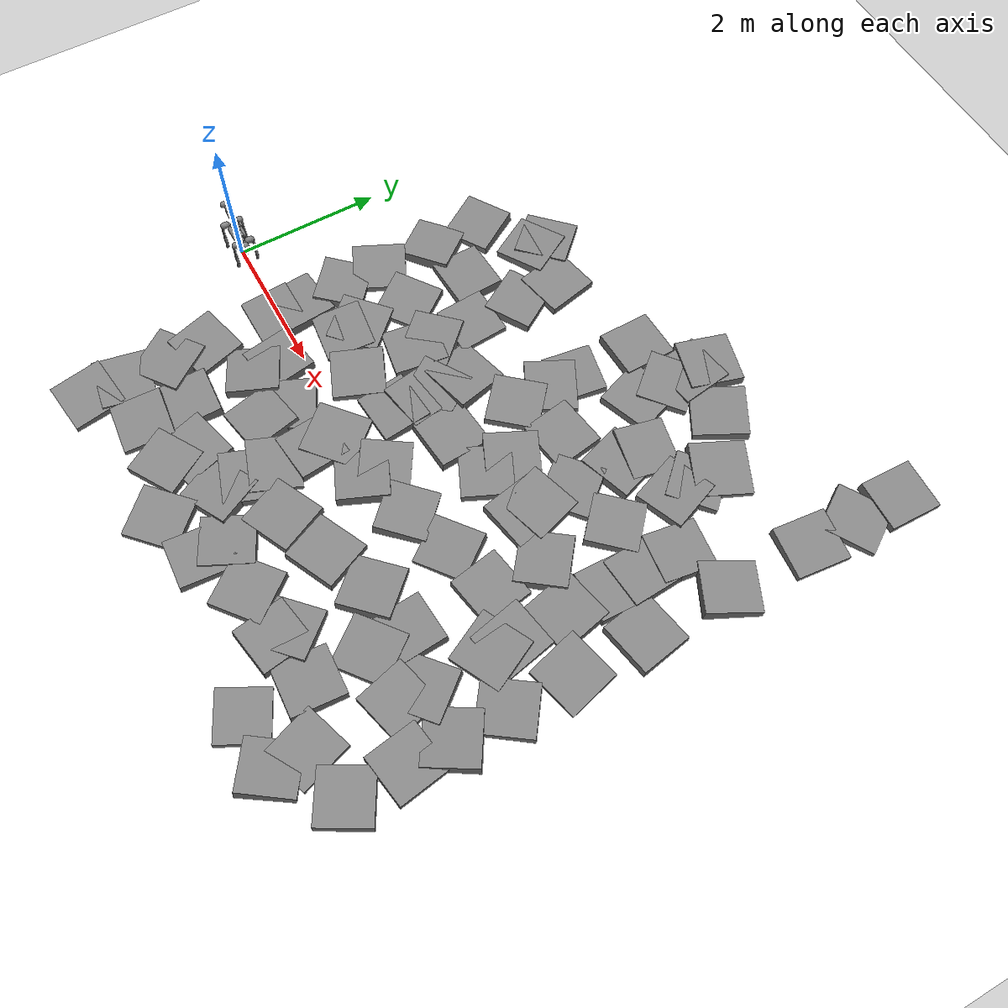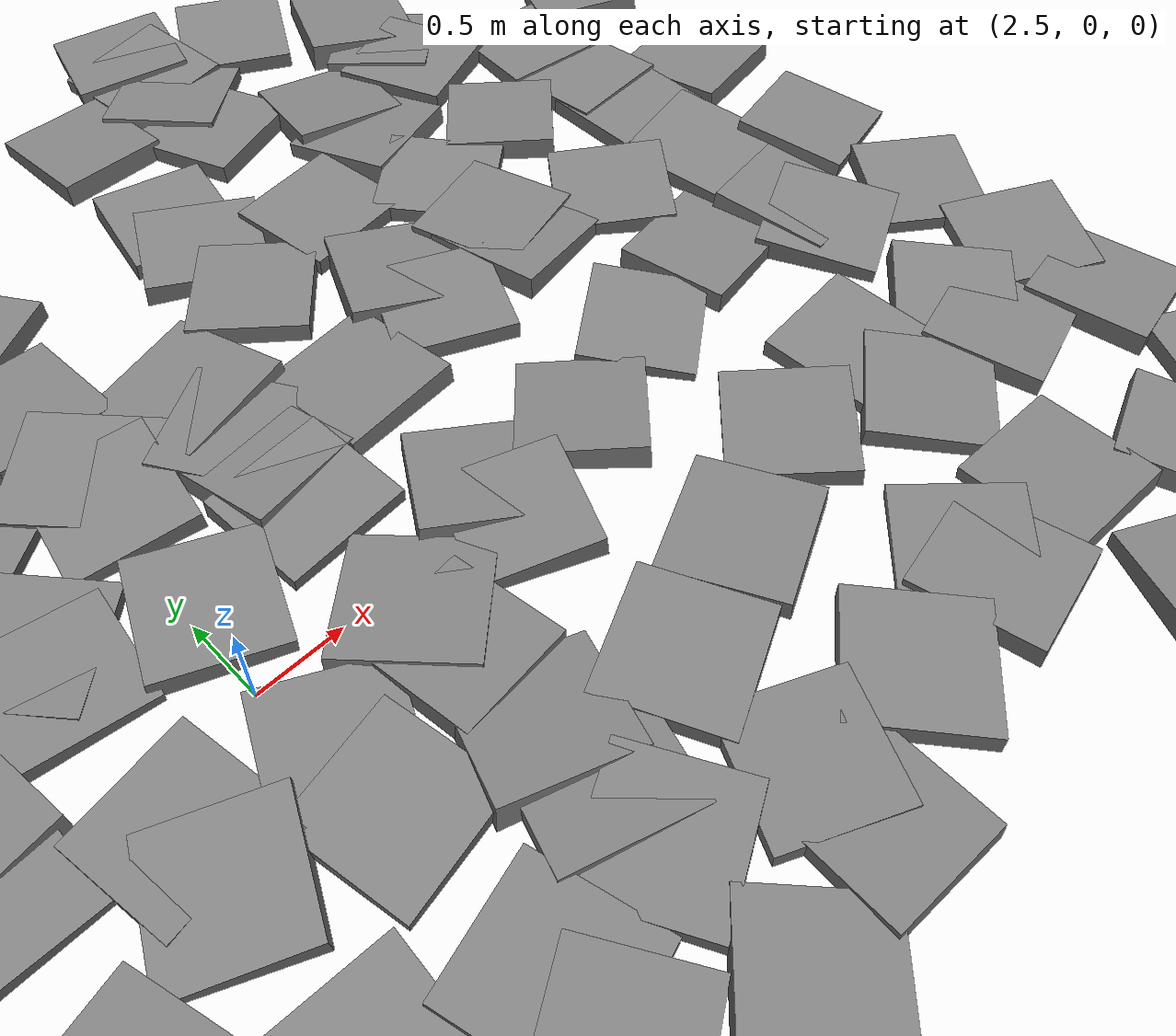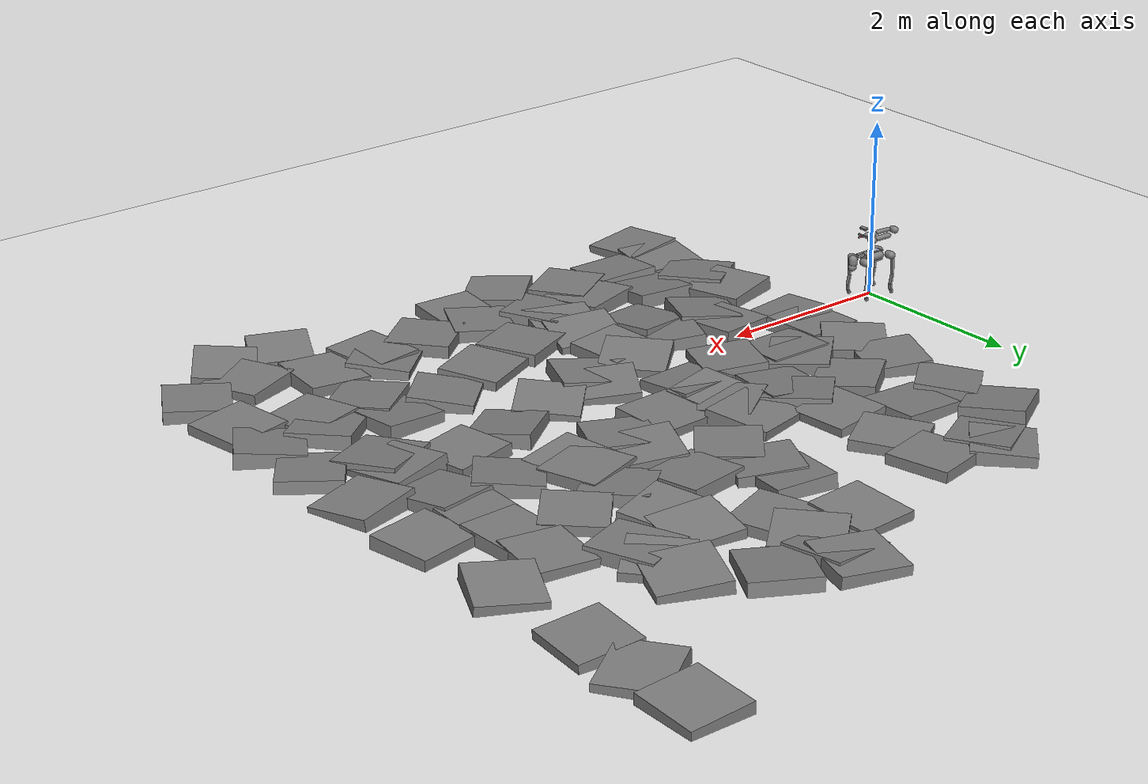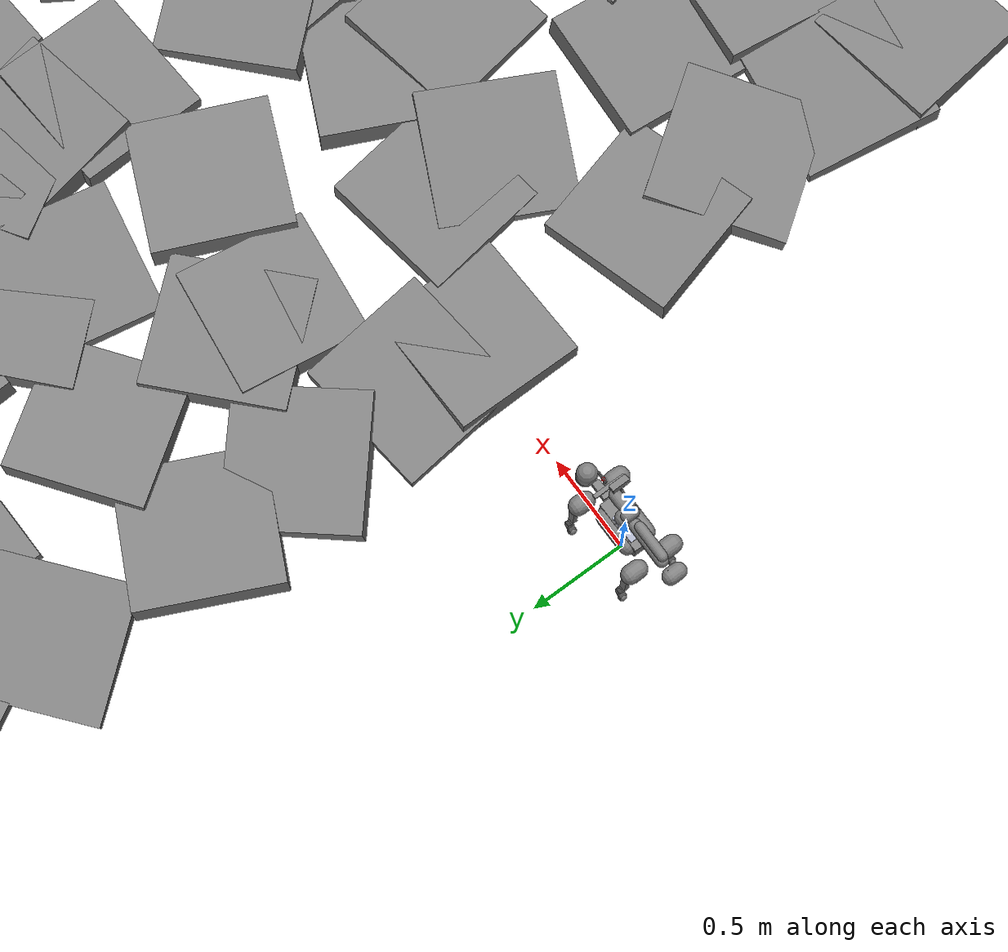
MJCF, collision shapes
<mujoco model="rough scene">
      <include file="go2_piper_l.xml"/>

      <statistic center="0 0 0.1" extent="0.8"/>

      <visual>
            <headlight diffuse="0.4 0.4 0.4" ambient="0.25 0.25 0.25" specular="0.25 0.25 0.25"/>
            <rgba haze="0.99 0.99 0.99 1"/>
            <global azimuth="-130" elevation="-20"/>
      </visual>
      <asset>
            <texture
                  type="skybox"
                  builtin="gradient"
                  rgb1="0.99 0.99 0.99"
                  rgb2="0.99 0.99 0.99"
                  width="512"
                  height="3072"
            />
            <texture
                  type="2d"
                  name="groundplane"
                  builtin="checker"
                  mark="edge"
                  rgb1="0.93 0.93 0.93"
                  rgb2="0.93 0.93 0.93"
                  markrgb="0 0 0"
                  width="250"
                  height="250"
            />
            <material name="groundplane" texture="groundplane" texuniform="true" texrepeat="5 5" reflectance="0.0"/>
      </asset>

      <worldbody>
            <light pos="0 0 5.0" dir="0 0 -1" directional="true" castshadow="false"/>

            <geom name="floor" size="0 0 0.05" type="plane" material="groundplane"/>

            <geom size="0.354678 0.358708 0.0896548" pos="1.2 -2.71166 0.02" quat="0.0652341 -0.0319302 0.0254488 -0.997034" type="box"/>
            <geom size="0.356488 0.365869 0.0788364" pos="1.2 -2.21978 0.02" quat="0.759952 -0.0193772 0.0245563 0.649226" type="box"/>
            <geom size="0.364622 0.35751 0.0906182" pos="1.2 -1.58577 0.02" quat="0.458906 -0.00516719 -0.0375923 0.887674" type="box"/>
            <geom size="0.354122 0.35046 0.0929774" pos="1.2 -1.06653 0.02" quat="0.990294 0.00586796 0.0316036 0.135219" type="box"/>
            <geom size="0.335666 0.343025 0.0812434" pos="1.2 -0.047247 0.02" quat="0.699206 0.0552936 -0.00835086 0.71273" type="box"/>
            <geom size="0.339463 0.36249 0.0864424" pos="1.2 0.317769 0.02" quat="0.745624 0.00539253 -0.0321707 -0.665567" type="box"/>
            <geom size="0.346239 0.335771 0.0967117" pos="1.2 0.974073 0.02" quat="0.938524 -0.0367319 0.00108768 -0.343253" type="box"/>
            <geom size="0.361414 0.341298 0.0918175" pos="1.2 1.53126 0.02" quat="0.843035 0.0321216 0.024535 0.536338" type="box"/>
            <geom size="0.335286 0.343191 0.0859845" pos="1.2 2.36775 0.02" quat="0.902709 0.00500436 -0.053257 -0.426913" type="box"/>
            <geom size="0.344622 0.334008 0.0979981" pos="1.2 3.08121 0.02" quat="0.867245 0.041568 0.0197942 -0.495747" type="box"/>
            <geom size="0.353424 0.341678 0.0853316" pos="1.9 -2.23449 0.02" quat="0.0506356 0.0172853 -0.0483532 0.997396" type="box"/>
            <geom size="0.34913 0.342748 0.0801555" pos="1.9 -1.59372 0.02" quat="0.998266 0.0473363 -0.017491 -0.0302989" type="box"/>
            <geom size="0.34364 0.350693 0.0913967" pos="1.9 -0.675116 0.02" quat="0.974087 0.0249417 -0.0498964 -0.219185" type="box"/>
            <geom size="0.353011 0.333798 0.0864206" pos="1.9 -0.315923 0.02" quat="0.996769 0.00784916 -0.019476 0.0775293" type="box"/>
            <geom size="0.334267 0.344324 0.0811139" pos="1.9 0.636574 0.02" quat="0.663122 0.00759046 0.0495771 -0.746829" type="box"/>
            <geom size="0.336241 0.358561 0.0890266" pos="1.9 0.885202 0.02" quat="0.40212 0.0362004 -0.00519903 0.914856" type="box"/>
            <geom size="0.341201 0.351484 0.0837107" pos="1.9 1.61867 0.02" quat="0.891391 0.00850887 0.0430055 -0.45111" type="box"/>
            <geom size="0.33302 0.366726 0.091285" pos="1.9 2.52752 0.02" quat="0.716961 0.025214 -0.0159079 -0.696475" type="box"/>
            <geom size="0.337699 0.347496 0.0939288" pos="1.9 3.54656 0.02" quat="0.50233 -0.0146459 -0.0372062 0.863751" type="box"/>
            <geom size="0.335654 0.360502 0.0911121" pos="1.9 3.78412 0.02" quat="0.920172 -0.00357184 -0.0312743 -0.390248" type="box"/>
            <geom size="0.333574 0.348359 0.0950439" pos="2.6 -2.20095 0.02" quat="0.492231 0.0128201 -0.000669289 0.87037" type="box"/>
            <geom size="0.359895 0.362198 0.0919442" pos="2.6 -1.82491 0.02" quat="0.990756 0.0263184 0.0151926 0.13221" type="box"/>
            <geom size="0.348548 0.350459 0.089338" pos="2.6 -0.882231 0.02" quat="0.994556 0.0372519 -0.0291963 0.0928359" type="box"/>
            <geom size="0.348484 0.347091 0.0813035" pos="2.6 -0.476281 0.02" quat="0.213481 0.0361536 -0.0243802 0.975973" type="box"/>
            <geom size="0.352582 0.342784 0.093094" pos="2.6 0.508585 0.02" quat="0.831823 0.0335048 0.00443074 0.554011" type="box"/>
            <geom size="0.34627 0.362757 0.0871507" pos="2.6 1.35291 0.02" quat="0.0845878 -0.0348768 -0.0213519 0.995577" type="box"/>
            <geom size="0.339962 0.36385 0.0998801" pos="2.6 1.60211 0.02" quat="0.370094 0.0271889 0.0305026 -0.928095" type="box"/>
            <geom size="0.338962 0.334916 0.0843823" pos="2.6 2.20558 0.02" quat="0.682859 0.031337 0.0272987 0.729367" type="box"/>
            <geom size="0.333355 0.362489 0.0847502" pos="2.6 2.94372 0.02" quat="0.275021 -0.00811829 -0.0240645 -0.961103" type="box"/>
            <geom size="0.352068 0.336788 0.0870109" pos="2.6 3.54017 0.02" quat="0.77751 -0.00483518 0.00535218 -0.628829" type="box"/>
            <geom size="0.360265 0.34693 0.082794" pos="3.3 -2.57122 0.02" quat="0.929187 0.029074 0.0189687 0.367977" type="box"/>
            <geom size="0.354015 0.345381 0.0963107" pos="3.3 -1.77017 0.02" quat="0.237504 0.0342253 -0.00473834 -0.970772" type="box"/>
            <geom size="0.365348 0.357255 0.0845119" pos="3.3 -1.37691 0.02" quat="0.986766 -0.0379353 0.00187736 -0.157638" type="box"/>
            <geom size="0.334136 0.365843 0.0975329" pos="3.3 -1.03014 0.02" quat="0.812501 -0.000369101 0.0567499 0.580191" type="box"/>
            <geom size="0.336489 0.345521 0.0955185" pos="3.3 -0.492389 0.02" quat="0.998053 -0.0186523 0.0127422 0.0581372" type="box"/>
            <geom size="0.363931 0.365425 0.0871527" pos="3.3 -0.162213 0.02" quat="0.93154 -0.0240255 0.0332841 0.361315" type="box"/>
            <geom size="0.335544 0.359939 0.0854125" pos="3.3 0.683015 0.02" quat="0.731599 0.0319146 0.0219907 -0.680632" type="box"/>
            <geom size="0.334482 0.342912 0.0938826" pos="3.3 1.0608 0.02" quat="0.994675 -0.0337491 0.0272725 0.093481" type="box"/>
            <geom size="0.335392 0.349373 0.0903187" pos="3.3 1.30254 0.02" quat="0.473372 0.0352887 0.00328001 0.88015" type="box"/>
            <geom size="0.366218 0.366639 0.0907957" pos="3.3 1.71047 0.02" quat="0.990801 -0.0411533 -0.0209012 0.127209" type="box"/>
            <geom size="0.337514 0.356996 0.0800177" pos="4 -2.35049 0.02" quat="0.99926 -0.0242953 0.0017573 -0.0297516" type="box"/>
            <geom size="0.35355 0.335905 0.0850661" pos="4 -1.96591 0.02" quat="0.528026 0.0159756 -0.0160628 -0.848926" type="box"/>
            <geom size="0.354043 0.363543 0.0900548" pos="4 -1.23044 0.02" quat="0.843119 0.010908 -0.00635495 -0.537578" type="box"/>
            <geom size="0.344493 0.337035 0.0932492" pos="4 -0.127273 0.02" quat="0.549308 0.0333683 -0.0301667 -0.834409" type="box"/>
            <geom size="0.332842 0.340403 0.0816387" pos="4 0.189606 0.02" quat="0.872441 0.0155629 0.0556251 0.485294" type="box"/>
            <geom size="0.359487 0.358148 0.0806559" pos="4 1.14433 0.02" quat="0.67717 -0.0297407 0.00803749 0.735182" type="box"/>
            <geom size="0.342038 0.352328 0.0891775" pos="4 2.10071 0.02" quat="0.346148 0.00751983 0.00326024 0.938144" type="box"/>
            <geom size="0.333806 0.356259 0.0891892" pos="4 2.62228 0.02" quat="0.524652 -0.0112595 0.0400123 -0.850301" type="box"/>
            <geom size="0.334875 0.333807 0.0909809" pos="4 2.97396 0.02" quat="0.090362 0.0200632 -0.0358422 0.995062" type="box"/>
            <geom size="0.333687 0.366864 0.0866356" pos="4 3.94708 0.02" quat="0.020248 -0.00811981 -0.0327082 -0.999227" type="box"/>
            <geom size="0.355994 0.357222 0.0974128" pos="4.7 -2.01145 0.02" quat="0.943493 0.00397657 -0.00466918 0.331334" type="box"/>
            <geom size="0.363729 0.343319 0.0817165" pos="4.7 -0.9726 0.02" quat="0.216405 0.0080518 -0.0239138 -0.975977" type="box"/>
            <geom size="0.351307 0.341265 0.0800383" pos="4.7 0.137803 0.02" quat="0.926282 -0.0499612 -0.0150184 -0.373202" type="box"/>
            <geom size="0.352663 0.34269 0.0930078" pos="4.7 1.26632 0.02" quat="0.976574 0.0135466 -0.00261269 -0.214737" type="box"/>
            <geom size="0.353988 0.36687 0.0943904" pos="4.7 1.63937 0.02" quat="0.541575 -0.0444384 0.0297327 -0.83895" type="box"/>
            <geom size="0.336508 0.360426 0.0929448" pos="4.7 2.37891 0.02" quat="0.653129 0.0163423 -0.0138705 0.756943" type="box"/>
            <geom size="0.359172 0.361896 0.0810459" pos="4.7 3.54596 0.02" quat="0.57204 -0.0113243 0.00919481 0.820096" type="box"/>
            <geom size="0.360775 0.342092 0.0848551" pos="4.7 3.98983 0.02" quat="0.910203 -0.0353399 0.013891 -0.412417" type="box"/>
            <geom size="0.34632 0.366458 0.0847792" pos="4.7 4.3363 0.02" quat="0.747172 0.0505765 -0.00886806 -0.662644" type="box"/>
            <geom size="0.360122 0.364323 0.097085" pos="4.7 4.62611 0.02" quat="0.606931 -0.00244147 -0.028534 -0.794239" type="box"/>
            <geom size="0.339307 0.354053 0.0991393" pos="5.4 -1.99562 0.02" quat="0.0861855 0.00790942 -0.0184931 -0.996076" type="box"/>
            <geom size="0.342828 0.338917 0.0791816" pos="5.4 -1.78216 0.02" quat="0.913638 0.00354878 -0.0520292 -0.40317" type="box"/>
            <geom size="0.350327 0.349284 0.0793987" pos="5.4 -0.696238 0.02" quat="0.925502 -0.0389156 -0.0339425 0.375207" type="box"/>
            <geom size="0.346925 0.33384 0.0805184" pos="5.4 0.365056 0.02" quat="0.313966 0.0162675 0.0493532 -0.948011" type="box"/>
            <geom size="0.364396 0.346531 0.0850257" pos="5.4 1.40655 0.02" quat="0.634414 0.0127202 0.0339293 0.772143" type="box"/>
            <geom size="0.362053 0.340205 0.0964936" pos="5.4 1.61171 0.02" quat="0.988713 0.00190482 0.0114558 0.149368" type="box"/>
            <geom size="0.333366 0.356651 0.0825036" pos="5.4 2.10753 0.02" quat="0.94012 0.0255222 -0.0136144 0.339614" type="box"/>
            <geom size="0.343799 0.366345 0.0830142" pos="5.4 2.81237 0.02" quat="0.814463 -0.035342 -0.0234585 -0.578663" type="box"/>
            <geom size="0.358491 0.332685 0.0807223" pos="5.4 3.21079 0.02" quat="0.99434 -0.0406809 0.0422377 -0.0885895" type="box"/>
            <geom size="0.365167 0.355411 0.0960704" pos="5.4 4.3156 0.02" quat="0.507703 0.0253923 0.0136717 -0.86105" type="box"/>
            <geom size="0.332648 0.335073 0.0816439" pos="6.1 -2.70408 0.02" quat="0.227359 0.0292626 0.0385252 0.972608" type="box"/>
            <geom size="0.346563 0.358086 0.0929296" pos="6.1 -1.87002 0.02" quat="0.998955 -0.0256111 -0.0265803 -0.0269456" type="box"/>
            <geom size="0.358907 0.347799 0.0875046" pos="6.1 -1.07574 0.02" quat="0.945481 0.0252224 -0.0048367 0.324662" type="box"/>
            <geom size="0.342332 0.358486 0.0852868" pos="6.1 -0.579977 0.02" quat="0.998891 0.0264887 -0.0266282 0.0283753" type="box"/>
            <geom size="0.339346 0.351711 0.0833436" pos="6.1 0.544706 0.02" quat="0.64033 0.0190141 0.0204006 0.767594" type="box"/>
            <geom size="0.357607 0.337918 0.0945795" pos="6.1 1.2923 0.02" quat="0.327698 -0.0414204 -0.018753 0.943688" type="box"/>
            <geom size="0.3403 0.339945 0.0924872" pos="6.1 2.30616 0.02" quat="0.405146 -0.0125868 -0.0201492 -0.913943" type="box"/>
            <geom size="0.341783 0.36692 0.0978317" pos="6.1 3.18711 0.02" quat="0.982501 -0.00200289 -0.0171298 0.185456" type="box"/>
            <geom size="0.339121 0.334077 0.0790374" pos="6.1 3.50458 0.02" quat="0.368136 -0.0305345 -0.0294672 -0.928803" type="box"/>
            <geom size="0.365643 0.366709 0.0985355" pos="6.1 3.85607 0.02" quat="0.204082 0.04858 0.0200244 0.977543" type="box"/>
            <geom size="0.355135 0.333523 0.0952333" pos="6.8 -2.6874 0.02" quat="0.4683 -0.0250365 -0.0572662 -0.881356" type="box"/>
            <geom size="0.333364 0.361002 0.0841948" pos="6.8 -2.22898 0.02" quat="0.161992 -0.0377871 0.0191606 -0.985882" type="box"/>
            <geom size="0.345343 0.344725 0.0860352" pos="6.8 -1.06201 0.02" quat="0.12633 -0.0208251 0.0171577 -0.991621" type="box"/>
            <geom size="0.363884 0.345565 0.0929311" pos="6.8 -0.750571 0.02" quat="0.337723 0.0228113 0.0281954 -0.940547" type="box"/>
            <geom size="0.360906 0.359784 0.0981111" pos="6.8 0.163579 0.02" quat="0.52928 0.0239292 -0.0358347 0.847352" type="box"/>
            <geom size="0.340803 0.3607 0.0988377" pos="6.8 0.440137 0.02" quat="0.992844 0.0431845 0.0542106 0.097251" type="box"/>
            <geom size="0.36404 0.360975 0.0866045" pos="6.8 1.18428 0.02" quat="0.993573 0.0484608 -0.00649486 0.102088" type="box"/>
            <geom size="0.34801 0.3334 0.0868067" pos="6.8 1.82124 0.02" quat="0.99985 -0.00808118 -0.00936224 -0.0121525" type="box"/>
            <geom size="0.341958 0.366414 0.0916521" pos="6.8 2.27429 0.02" quat="0.0336503 0.0156748 -0.019894 -0.999113" type="box"/>
            <geom size="0.34048 0.353592 0.0839161" pos="6.8 2.78706 0.02" quat="0.0676876 -0.0148025 0.024145 0.997305" type="box"/>
            <geom size="0.345322 0.353147 0.0953584" pos="7.5 -2.08615 0.02" quat="0.864319 -0.0154579 -0.00875528 0.50263" type="box"/>
            <geom size="0.348504 0.355258 0.0897459" pos="7.5 -1.30978 0.02" quat="0.996714 -0.00852771 0.0211766 0.0777161" type="box"/>
            <geom size="0.360977 0.352154 0.0919536" pos="7.5 -0.734571 0.02" quat="0.274492 -0.0480006 -0.0152596 0.960269" type="box"/>
            <geom size="0.339904 0.361235 0.0812563" pos="7.5 -0.0101444 0.02" quat="0.95015 0.0254238 -0.0100935 -0.310591" type="box"/>
            <geom size="0.363075 0.355135 0.0859519" pos="7.5 0.854535 0.02" quat="0.125317 -0.0421702 0.0438916 -0.990248" type="box"/>
            <geom size="0.352644 0.364296 0.094377" pos="7.5 1.85761 0.02" quat="0.640287 -0.0170853 0.0118916 0.767853" type="box"/>
            <geom size="0.358622 0.346047 0.0915758" pos="7.5 3.04778 0.02" quat="0.846414 -0.0481847 0.0274869 0.529628" type="box"/>
            <geom size="0.362359 0.344544 0.0931228" pos="7.5 4.24261 0.02" quat="0.740763 0.0281308 0.0334315 0.670345" type="box"/>
            <geom size="0.365172 0.333489 0.0885586" pos="7.5 4.92962 0.02" quat="0.282147 -0.0375309 0.00560447 -0.958621" type="box"/>
            <geom size="0.34329 0.364698 0.0939696" pos="7.5 5.60445 0.02" quat="0.99929 -0.0220652 0.0294936 -0.00789042" type="box"/>
      </worldbody>
</mujoco>

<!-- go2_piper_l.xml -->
<mujoco model="go2_piper_l">
    <compiler angle="radian" autolimits="true"/>

    <option cone="elliptic" impratio="100"/>

    <default>
        <default class="go2">
            <joint axis="0 1 0"/>
            <geom friction="0.6" margin="0.001"/>
            <motor ctrlrange="-23.7 23.7"/>
            <default class="abduction">
                <joint axis="1 0 0" range="-1.0472 1.0472"/>
            </default>
            <default class="hip">
                <default class="front_hip">
                    <joint range="-1.5708 3.4907"/>
                </default>
                <default class="back_hip">
                    <joint range="-0.5236 4.5379"/>
                </default>
            </default>
            <default class="knee">
                <joint range="-2.7227 -0.83776"/>
                <motor ctrlrange="-45.43 45.43"/>
            </default>
            <default class="visual">
                <geom type="mesh" contype="0" conaffinity="0" group="2"/>
            </default>
            <default class="collision">
                <geom group="3"/>
            </default>
        </default>
    </default>

    <asset>
        <material name="metal" rgba=".9 .95 .95 1"/>
        <material name="black" rgba="0 0 0 1"/>
        <material name="white" rgba="1 1 1 1"/>
        <material name="gray" rgba="0.671705 0.692426 0.774270 1"/>

        <mesh file="go2/assets/base_0.obj"/>
        <mesh file="go2/assets/base_1.obj"/>
        <mesh file="go2/assets/base_2.obj"/>
        <mesh file="go2/assets/base_3.obj"/>
        <mesh file="go2/assets/base_4.obj"/>
        <mesh file="go2/assets/hip_0.obj"/>
        <mesh file="go2/assets/hip_1.obj"/>
        <mesh file="go2/assets/thigh_0.obj"/>
        <mesh file="go2/assets/thigh_1.obj"/>
        <mesh file="go2/assets/thigh_mirror_0.obj"/>
        <mesh file="go2/assets/thigh_mirror_1.obj"/>
        <mesh file="go2/assets/calf_0.obj"/>
        <mesh file="go2/assets/calf_1.obj"/>
        <mesh file="go2/assets/calf_mirror_0.obj"/>
        <mesh file="go2/assets/calf_mirror_1.obj"/>
        <mesh file="go2/assets/foot.obj"/>

        <mesh name="base_link" file="piper_l/assets/base_link.STL"/>
        <mesh name="link1" file="piper_l/assets/link1.STL"/>
        <mesh name="link2" file="piper_l/assets/link2.STL"/>
        <mesh name="link3" file="piper_l/assets/link3.STL"/>
        <mesh name="link4" file="piper_l/assets/link4.STL"/>
        <mesh name="link5" file="piper_l/assets/link5.STL"/>
        <mesh name="link7" file="piper_l/assets/link7.STL"/>
        <mesh name="link8" file="piper_l/assets/link8.STL"/>
        <mesh name="gripper_base_100_v3" file="piper_l/assets/gripper_base_100_v3.STL"/>
        <mesh name="realsense_mid_stand_v2" content_type="model/stl" file="piper_l/assets/realsense_mid_stand_v2.STL"/>
    </asset>

    <worldbody>
        <body name="base" pos="0 0 0.445" childclass="go2">
            <inertial pos="0.021112 0 -0.005366" quat="-0.000543471 0.713435 -0.00173769 0.700719" mass="6.921"
                      diaginertia="0.107027 0.0980771 0.0244531"/>
            <freejoint/>

            <geom mesh="base_0" material="black" class="visual"/>
            <geom mesh="base_1" material="black" class="visual"/>
            <geom mesh="base_2" material="black" class="visual"/>
            <geom mesh="base_3" material="white" class="visual"/>
            <geom mesh="base_4" material="gray" class="visual"/>
            <geom size="0.07 0.04 0.01" pos="-0.02 0.0 0.06" material="gray" type="box" class="visual"/>

            <geom size="0.13 0.04675 0.06" type="box" class="collision"/>
            <geom size="0.07 0.04 0.01" pos="-0.02 0.0 0.06" type="box" class="collision"/>
            <geom size="0.045 0.02 0.02" pos="0.18 0.0 0.055" type="box" class="collision"/>
            <geom size="0.045 0.08" pos="0.0 0.05 0.01" quat="0.707107 0 0.707107 0" type="capsule" class="collision"/>
            <geom size="0.045 0.08" pos="0.0 -0.05 0.01" quat="0.707107 0 0.707107 0" type="capsule" class="collision"/>

            <geom size="0.05 0.018" pos="0.285 0 0.01" type="capsule" class="collision"/>
            <geom size="0.047" pos="0.293 0 -0.06" class="collision"/>

            <site name="imu" pos="-0.02557 0 0.04232"/>

            <body name="FL_hip" pos="0.1934 0.0465 0">
                <inertial pos="-0.0054 0.00194 -0.000105" quat="0.497014 0.499245 0.505462 0.498237" mass="0.678"
                          diaginertia="0.00088403 0.000596003 0.000479967"/>
                <joint name="FL_hip_joint" class="abduction" damping="0.1531" armature="0.0010" frictionloss="0.2884"/>
                <geom mesh="hip_0" material="metal" class="visual"/>
                <geom mesh="hip_1" material="gray" class="visual"/>
                <geom size="0.046 0.02" pos="0 0.05 0" quat="1 1 0 0" type="capsule" class="collision"/>
                <body name="FL_thigh" pos="0 0.0955 0">
                    <inertial pos="-0.00374 -0.0223 -0.0327" quat="0.829533 0.0847635 -0.0200632 0.551623" mass="1.152"
                              diaginertia="0.00594973 0.00584149 0.000878787"/>
                    <joint name="FL_thigh_joint" class="front_hip" damping="0.2406" armature="0.0197" frictionloss="0.1739"/>
                    <geom mesh="thigh_0" material="metal" class="visual"/>
                    <geom mesh="thigh_1" material="gray" class="visual"/>
                    <geom size="0.1065 0.01225 0.017" pos="0 0 -0.1065" quat="0.707107 0 0.707107 0" type="box"
                          class="collision"/>
                    <body name="FL_calf" pos="0 0 -0.213">
                        <inertial pos="0.00629595 -0.000622121 -0.141417"
                                  quat="0.710672 0.00154099 -0.00450087 0.703508"
                                  mass="0.241352" diaginertia="0.0014901 0.00146356 5.31397e-05"/>
                        <joint name="FL_calf_joint" class="knee" damping="0.1450" armature="0.0356" frictionloss="1.0151"/>
                        <geom mesh="calf_0" material="gray" class="visual"/>
                        <geom mesh="calf_1" material="black" class="visual"/>
                        <geom size="0.012 0.017  0.06" pos="0.008 0 -0.06" quat="0.994493 0 -0.104807 0" type="box"
                              class="collision"/>
                        <geom size="0.011 0.017  0.03" pos="0.02 0 -0.148" quat="0.999688 0 0.0249974 0" type="box"
                              class="collision"/>
                        <geom size="0.011 0.017  0.017" pos="0.008 0 -0.190" quat="0.999688 0 0.249974 0" type="box"
                              class="collision"/>
                        <geom pos="0 0 -0.213" mesh="foot" class="visual" material="black"/>

                        <!--geom name="FL" class="collision" size="0.022" pos="-0.002 0 -0.213" priority="1" condim="6"
                          friction="0.8 0.02 0.01"/-->

                        <body name="FL_foot" pos="-0.002 0 -0.213">
                            <inertial pos="0 0 0" mass="0.02" diaginertia="3.872e-06 3.872e-06 3.872e-06"/>
                            <!-- FL_foot only collision -->
                            <geom name="FL" class="collision" size="0.022"/>
                        </body>

                    </body>
                </body>
            </body>
            <body name="FR_hip" pos="0.1934 -0.0465 0">
                <inertial pos="-0.0054 -0.00194 -0.000105" quat="0.498237 0.505462 0.499245 0.497014" mass="0.678"
                          diaginertia="0.00088403 0.000596003 0.000479967"/>
                <joint name="FR_hip_joint" class="abduction" damping="0.2628" armature="0.0129" frictionloss="0.1835"/>
                <geom mesh="hip_0" material="metal" class="visual" quat="4.63268e-05 1 0 0"/>
                <geom mesh="hip_1" material="gray" class="visual" quat="4.63268e-05 1 0 0"/>
                <geom size="0.046 0.02" pos="0 -0.05 0" quat="0.707107 0.707107 0 0" type="capsule" class="collision"/>
                <body name="FR_thigh" pos="0 -0.0955 0">
                    <inertial pos="-0.00374 0.0223 -0.0327" quat="0.551623 -0.0200632 0.0847635 0.829533" mass="1.152"
                              diaginertia="0.00594973 0.00584149 0.000878787"/>
                    <joint name="FR_thigh_joint" class="front_hip" damping="0.1420" armature="0.0135" frictionloss="0.2386"/>
                    <geom mesh="thigh_mirror_0" material="metal" class="visual"/>
                    <geom mesh="thigh_mirror_1" material="gray" class="visual"/>
                    <geom size="0.1065 0.01225 0.017" pos="0 0 -0.1065" quat="0.707107 0 0.707107 0" type="box"
                          class="collision"/>
                    <body name="FR_calf" pos="0 0 -0.213">
                        <inertial pos="0.00629595 0.000622121 -0.141417" quat="0.703508 -0.00450087 0.00154099 0.710672"
                                  mass="0.241352" diaginertia="0.0014901 0.00146356 5.31397e-05"/>
                        <joint name="FR_calf_joint" class="knee" damping="0.1728" armature="0.0371" frictionloss="0.4912"/>
                        <geom mesh="calf_mirror_0" material="gray" class="visual"/>
                        <geom mesh="calf_mirror_1" material="black" class="visual"/>
                        <geom size="0.012 0.017  0.06" pos="0.008 0 -0.06" quat="0.994493 0 -0.104807 0" type="box"
                              class="collision"/>
                        <geom size="0.011 0.017  0.03" pos="0.02 0 -0.148" quat="0.999688 0 0.0249974 0" type="box"
                              class="collision"/>
                        <geom size="0.011 0.017  0.017" pos="0.008 0 -0.190" quat="0.999688 0 0.249974 0" type="box"
                              class="collision"/>
                        <geom pos="0 0 -0.213" mesh="foot" class="visual" material="black"/>

                        <!--geom name="FR" class="collision" size="0.022" pos="-0.002 0 -0.213" priority="1" condim="6"
                          friction="0.8 0.02 0.01"/-->

                        <body name="FR_foot" pos="-0.002 0 -0.213">
                            <inertial pos="0 0 0" mass="0.02" diaginertia="3.872e-06 3.872e-06 3.872e-06"/>
                            <!-- FR_foot only collision -->
                            <geom name="FR" class="collision" size="0.022"/>
                        </body>

                    </body>
                </body>
            </body>
            <body name="RL_hip" pos="-0.1934 0.0465 0">
                <inertial pos="0.0054 0.00194 -0.000105" quat="0.505462 0.498237 0.497014 0.499245" mass="0.678"
                          diaginertia="0.00088403 0.000596003 0.000479967"/>
                <joint name="RL_hip_joint" class="abduction" damping="0.2243" armature="0.0075" frictionloss="0.1550"/>
                <geom mesh="hip_0" material="metal" class="visual" quat="4.63268e-05 0 1 0"/>
                <geom mesh="hip_1" material="gray" class="visual" quat="4.63268e-05 0 1 0"/>
                <geom size="0.046 0.02" pos="0 0.05 0" quat="0.707107 0.707107 0 0" type="capsule" class="collision"/>
                <body name="RL_thigh" pos="0 0.0955 0">
                    <inertial pos="-0.00374 -0.0223 -0.0327" quat="0.829533 0.0847635 -0.0200632 0.551623" mass="1.152"
                              diaginertia="0.00594973 0.00584149 0.000878787"/>
                    <joint name="RL_thigh_joint" class="back_hip" damping="0.2352" armature="0.0205" frictionloss="0.1388"/>
                    <geom mesh="thigh_0" material="metal" class="visual"/>
                    <geom mesh="thigh_1" material="gray" class="visual"/>
                    <geom size="0.1065 0.01225 0.017" pos="0 0 -0.1065" quat="0.707107 0 0.707107 0" type="box"
                          class="collision"/>
                    <body name="RL_calf" pos="0 0 -0.213">
                        <inertial pos="0.00629595 -0.000622121 -0.141417"
                                  quat="0.710672 0.00154099 -0.00450087 0.703508"
                                  mass="0.241352" diaginertia="0.0014901 0.00146356 5.31397e-05"/>
                        <joint name="RL_calf_joint" class="knee" damping="0.1201" armature="0.0228" frictionloss="1.3573"/>
                        <geom mesh="calf_0" material="gray" class="visual"/>
                        <geom mesh="calf_1" material="black" class="visual"/>
                        <geom size="0.012 0.017  0.06" pos="0.008 0 -0.06" quat="0.994493 0 -0.104807 0" type="box"
                              class="collision"/>
                        <geom size="0.011 0.017  0.03" pos="0.02 0 -0.148" quat="0.999688 0 0.0249974 0" type="box"
                              class="collision"/>
                        <geom size="0.011 0.017  0.017" pos="0.008 0 -0.190" quat="0.999688 0 0.249974 0" type="box"
                              class="collision"/>
                        <geom pos="0 0 -0.213" mesh="foot" class="visual" material="black"/>

                        <!--geom name="RL" class="collision" size="0.022" pos="-0.002 0 -0.213" priority="1" condim="6"
                          friction="0.8 0.02 0.01"/-->

                        <body name="RL_foot" pos="-0.002 0 -0.213">
                            <inertial pos="0 0 0" mass="0.02" diaginertia="3.872e-06 3.872e-06 3.872e-06"/>
                            <!-- RL_foot only collision -->
                            <geom name="RL" class="collision" size="0.022"/>
                        </body>

                    </body>
                </body>
            </body>
            <body name="RR_hip" pos="-0.1934 -0.0465 0">
                <inertial pos="0.0054 -0.00194 -0.000105" quat="0.499245 0.497014 0.498237 0.505462" mass="0.678"
                          diaginertia="0.00088403 0.000596003 0.000479967"/>
                <joint name="RR_hip_joint" class="abduction" damping="0.2989" armature="0.0081" frictionloss="0.2488"/>
                <geom mesh="hip_0" material="metal" class="visual" quat="2.14617e-09 4.63268e-05 4.63268e-05 -1"/>
                <geom mesh="hip_1" material="gray" class="visual" quat="2.14617e-09 4.63268e-05 4.63268e-05 -1"/>
                <geom size="0.046 0.02" pos="0 -0.05 0" quat="0.707107 0.707107 0 0" type="capsule" class="collision"/>
                <body name="RR_thigh" pos="0 -0.0955 0">
                    <inertial pos="-0.00374 0.0223 -0.0327" quat="0.551623 -0.0200632 0.0847635 0.829533" mass="1.152"
                              diaginertia="0.00594973 0.00584149 0.000878787"/>
                    <joint name="RR_thigh_joint" class="back_hip" damping="0.1983" armature="0.0139" frictionloss="0.2484"/>
                    <geom mesh="thigh_mirror_0" material="metal" class="visual"/>
                    <geom mesh="thigh_mirror_1" material="gray" class="visual"/>
                    <geom size="0.1065 0.01225 0.017" pos="0 0 -0.1065" quat="0.707107 0 0.707107 0" type="box"
                          class="collision"/>
                    <body name="RR_calf" pos="0 0 -0.213">
                        <inertial pos="0.00629595 0.000622121 -0.141417" quat="0.703508 -0.00450087 0.00154099 0.710672"
                                  mass="0.241352" diaginertia="0.0014901 0.00146356 5.31397e-05"/>
                        <joint name="RR_calf_joint" class="knee" damping="0.1000" armature="0.0332" frictionloss="0.7893"/>
                        <geom mesh="calf_mirror_0" material="gray" class="visual"/>
                        <geom mesh="calf_mirror_1" material="black" class="visual"/>
                        <geom size="0.012 0.017  0.06" pos="0.008 0 -0.06" quat="0.994493 0 -0.104807 0" type="box"
                              class="collision"/>
                        <geom size="0.011 0.017  0.03" pos="0.02 0 -0.148" quat="0.999688 0 0.0249974 0" type="box"
                              class="collision"/>
                        <geom size="0.011 0.017  0.017" pos="0.008 0 -0.190" quat="0.999688 0 0.249974 0" type="box"
                              class="collision"/>
                        <geom pos="0 0 -0.213" mesh="foot" class="visual" material="black"/>

                        <!--geom name="RR" class="collision" size="0.022" pos="-0.002 0 -0.213" priority="1" condim="6"
                          friction="0.8 0.02 0.01"/-->

                        <body name="RR_foot" pos="-0.002 0 -0.213">
                            <inertial pos="0 0 0" mass="0.02" diaginertia="3.872e-06 3.872e-06 3.872e-06"/>
                            <!-- RR_foot only collision -->
                            <geom name="RR" class="collision" size="0.022"/>
                        </body>

                    </body>
                </body>
            </body>

            <!-- piper_l arm (from piper_l/piper_l.xml) -->
            <geom pos="0 0 0.07" quat="0.999994 0.000457118 0.00346448 0" class="visual" material="gray" mesh="base_link"/>
            <body name="link1" pos="0.000852257 -0.00011245 0.192997" quat="0.999994 0.000457118 0.00346448 0">
              <inertial pos="-0.000108818 0.000607029 -0.00538686" quat="0.701411 0.712748 -0.000102414 -0.00362695" mass="0.71" diaginertia="0.000458361 0.000409985 0.000334505"/>
              <joint name="joint1" pos="0 0 0" axis="0 0 1" range="-2.618 2.618" armature="0.2380" damping="0.5000" frictionloss="0.5000"/>
              <geom class="visual" material="gray" mesh="link1"/>

              <body name="link2" quat="0.047971 -0.0479709 -0.705478 -0.705478">
                <inertial pos="0.258453 -0.00907882 0.00209824" quat="0.33951 0.630002 0.324014 0.618745" mass="1.16404" diaginertia="0.0162743 0.0162573 0.000956571"/>
                <joint name="joint2" pos="0 0 0" axis="0 0 1" range="0 3.14" armature="0.2069" damping="0.5000" frictionloss="0.5000"/>
                <geom class="visual" material="gray" mesh="link2"/>
                <geom class="collision" size="0.04 0.02" quat="0.707107 0 0 0.707107" type="capsule"/>
                <geom class="collision" size="0.03 0.1" pos="0.15 -0.025 0" quat="0.703163 0 0.703163 -0.105474" type="capsule"/>

                <body name="link3" pos="0.33823 0 0" quat="0.624016 0 0 -0.781412">
                  <inertial pos="-0.00810222 -0.192422 -0.000651809" quat="0.709181 0.703284 -0.0204559 0.0451178" mass="0.583343" diaginertia="0.00556992 0.00550867 0.000258804"/>
                  <joint name="joint3" pos="0 0 0" axis="0 0 1" range="-2.697 0" armature="0.3453" damping="0.5000" frictionloss="0.5000"/>
                  <geom class="visual" material="gray" mesh="link3"/>
                  <geom class="collision" size="0.04 0.02" quat="0.707107 0 0 0.707107" type="capsule"/>
                  <geom class="collision" size="0.025 0.08" pos="-0.01 -0.17 0" quat="0.706665 0.706665 0 0.0353333" type="capsule"/>

                  <body name="link4" pos="0 -0.32075 0" quat="0.705117 0.70512 0.0529832 0.0529834">
                    <inertial pos="0.00312889 -0.00168781 -0.00425666" quat="0.859761 0.0861299 -0.104595 0.492395" mass="0.366062" diaginertia="0.000174503 0.000169733 0.000142021"/>
                    <joint name="joint4" pos="0 0 0" axis="0 0 1" range="-1.832 1.832" armature="0.0010" damping="0.2497" frictionloss="0.1074"/>
                    <geom class="visual" material="gray" mesh="link4"/>
                    <geom class="collision" size="0.03 0.015" quat="0.707107 0.707107 0 0" type="capsule"/>

                    <body name="link5" quat="0.706222 -0.706225 -0.0353407 -0.0353405">
                      <inertial pos="0.00417769 -0.0639706 -0.00267944" quat="0.609413 0.425035 -0.377108 0.552947" mass="0.376242" diaginertia="0.000302186 0.000295139 0.000150851"/>
                      <joint name="joint5" pos="0 0 0" axis="0 0 1" range="-1.22 1.22" armature="0.0232" damping="0.1736" frictionloss="0.1433"/>
                      <geom class="visual" material="gray" mesh="link5"/>
                      <geom class="collision" size="0.03 0.025" pos="0 -0.08 0" quat="0.707107 0.707107 0 0" type="capsule"/>

                      <body name="link6" pos="0 -0.091 0" quat="0.707105 0.707108 0 0">
                        <inertial pos="0.0111527268 0.00269159034 0.0371316254" quat="0.491523877 0.525880573 -0.516820751 -0.463411494" mass="0.537494" diaginertia="0.000323982045 0.000453515785 0.000630547405"/>
                        <joint name="joint6" pos="0 0 0" axis="0 0 1" range="-3.14 3.14" armature="0.0010" damping="0.2864" frictionloss="0.0404"/>
                        <geom class="visual" pos="0.008 -0.002 0.064" quat="0.500398 -0.5 -0.499602 0.5" material="gray" mesh="gripper_base_100_v3"/>
                        <geom class="collision" size="0.082 0.01 0.01" pos="0 0 0.06" quat="0.500398 -0.5 -0.499602 0.5" type="box"/>

                        <!-- realsense stand (geometry only, mass is in the link6 inertial) -->
                        <geom pos="-0.034 -0.002 0.023" quat="0.000563312 -0.706825 0.707388 0.000562864" mesh="realsense_mid_stand_v2" class="visual"/>
                        <geom size="0.012525 0.045 0.0125" pos="-0.0740961 -0.03 0.03725" quat="0.819648 0 -0.572867 0" type="box" class="visual"/>
                        <geom size="0.017 0.045 0.0125" pos="-0.0760961 -0.03 0.032" quat="0.819648 0 -0.572867 0" type="box" class="collision"/>

                        <site name="attachment_site" size="0.01" pos="0 0 0.1" rgba="1 0 0 1" group="1"/>

                        <body name="link7" pos="0 0 0.13503" quat="0.707105 0.707108 0 0">
                          <inertial pos="0.000277817 -0.0467674 -0.0092103" quat="0.553273 0.439968 -0.46134 0.536174" mass="0.0264822" diaginertia="1.45133e-05 1.0004e-05 5.87021e-06"/>
                          <joint name="joint7" pos="0 0 0" axis="0 0 -1" type="slide" range="0 0.05" armature="0.0010" damping="0.0010" frictionloss="0.0010"/>
                          <geom class="visual" material="gray" mesh="link7"/>
                          <geom class="collision" size="0.01 0.03 0.002" pos="0 -0.025 -0.003" type="box"/>
                        </body>

                        <body name="link8" pos="0 0 0.13503" quat="0.707105 -0.707108 0 0">
                          <inertial pos="0.000277817 0.0467674 -0.0092103" quat="0.553273 0.439968 -0.46134 0.536174" mass="0.0264822" diaginertia="1.45133e-05 1.0004e-05 5.87021e-06"/>
                          <joint name="joint8" pos="0 0 0" axis="0 0 1" type="slide" range="-0.05 0" armature="0.0010" damping="0.0010" frictionloss="0.0010"/>
                          <geom class="visual" material="gray" mesh="link8"/>
                          <geom class="collision" size="0.01 0.03 0.002" pos="0 0.025 -0.003" type="box"/>
                        </body>

                      </body>
                    </body>
                  </body>
                </body>
              </body>
            </body>
        </body>
    </worldbody>
    <equality>
        <joint joint1="joint8" joint2="joint7" polycoef="0 -1 0 0 0"/>
    </equality>

    <actuator>
        <motor class="abduction" name="FL_hip" joint="FL_hip_joint"/>
        <motor class="hip" name="FL_thigh" joint="FL_thigh_joint"/>
        <motor class="knee" name="FL_calf" joint="FL_calf_joint"/>
        <motor class="abduction" name="FR_hip" joint="FR_hip_joint"/>
        <motor class="hip" name="FR_thigh" joint="FR_thigh_joint"/>
        <motor class="knee" name="FR_calf" joint="FR_calf_joint"/>
        <motor class="abduction" name="RL_hip" joint="RL_hip_joint"/>
        <motor class="hip" name="RL_thigh" joint="RL_thigh_joint"/>
        <motor class="knee" name="RL_calf" joint="RL_calf_joint"/>
        <motor class="abduction" name="RR_hip" joint="RR_hip_joint"/>
        <motor class="hip" name="RR_thigh" joint="RR_thigh_joint"/>
        <motor class="knee" name="RR_calf" joint="RR_calf_joint"/>

        <motor name="joint1" ctrlrange="-32 32" joint="joint1"/>
        <motor name="joint2" ctrlrange="-32 32" joint="joint2"/>
        <motor name="joint3" ctrlrange="-32 32" joint="joint3"/>
        <motor name="joint4" ctrlrange="-8 8" joint="joint4"/>
        <motor name="joint5" ctrlrange="-8 8" joint="joint5"/>
        <motor name="joint6" ctrlrange="-8 8" joint="joint6"/>
        <motor name="gripper" ctrlrange="-0.5 0.5" joint="joint7"/>
    </actuator>

    <sensor>
        <accelerometer name="imu_acc" site="imu"/>
        <gyro name="imu_gyro" site="imu"/>
        <framepos name="imu_pos" objtype="site" objname="imu"/>
        <framequat name="imu_quat" objtype="site" objname="imu"/>

        <jointpos name="joint_FL_hip_joint_pos" joint="FL_hip_joint"/>
        <jointpos name="joint_FL_thigh_joint_pos" joint="FL_thigh_joint"/>
        <jointpos name="joint_FL_calf_joint_pos" joint="FL_calf_joint"/>
        <jointpos name="joint_FR_hip_joint_pos" joint="FR_hip_joint"/>
        <jointpos name="joint_FR_thigh_joint_pos" joint="FR_thigh_joint"/>
        <jointpos name="joint_FR_calf_joint_pos" joint="FR_calf_joint"/>
        <jointpos name="joint_RL_hip_joint_pos" joint="RL_hip_joint"/>
        <jointpos name="joint_RL_thigh_joint_pos" joint="RL_thigh_joint"/>
        <jointpos name="joint_RL_calf_joint_pos" joint="RL_calf_joint"/>
        <jointpos name="joint_RR_hip_joint_pos" joint="RR_hip_joint"/>
        <jointpos name="joint_RR_thigh_joint_pos" joint="RR_thigh_joint"/>
        <jointpos name="joint_RR_calf_joint_pos" joint="RR_calf_joint"/>

        <jointpos name="joint1_pos" joint="joint1"/>
        <jointpos name="joint2_pos" joint="joint2"/>
        <jointpos name="joint3_pos" joint="joint3"/>
        <jointpos name="joint4_pos" joint="joint4"/>
        <jointpos name="joint5_pos" joint="joint5"/>
        <jointpos name="joint6_pos" joint="joint6"/>
        <jointpos name="gripper_pos" joint="joint7"/>
    </sensor>

    <keyframe>
        <key name="home" qpos="0 0 0.27 1 0 0 0 0 0.9 -1.8 0 0.9 -1.8 0 0.9 -1.8 0 0.9 -1.8 0 0 0 0 0 0 0.05 -0.05"/>
        <key name="down" qpos="0 0 0.05 1 0 0 0 0.0 1.21 -2.794 0.0 1.21 -2.794 0.40 1.21 -2.794 -0.40 1.21 -2.794 0 0 0 0 0 0 0.05 -0.05"/>
        <key name="sys_id_1" qpos="0 0 0.05 1 0 0 0 0.0 1.21 -2.5 0.0 1.21 -2.5 0.0 1.21 -2.5 0.0 1.21 -2.5 0 0 0 0 0 0 0.05 -0.05"/>
        <key name="sys_id_2" qpos="0 0 0.05 1 0 0 0 0.6 0.5 -1.4 0.6 0.5 -1.4 0.6 0.5 -1.4 0.6 0.5 -1.4 0 0 0 0 0 0 0.05 -0.05"/>
    </keyframe>
</mujoco>
